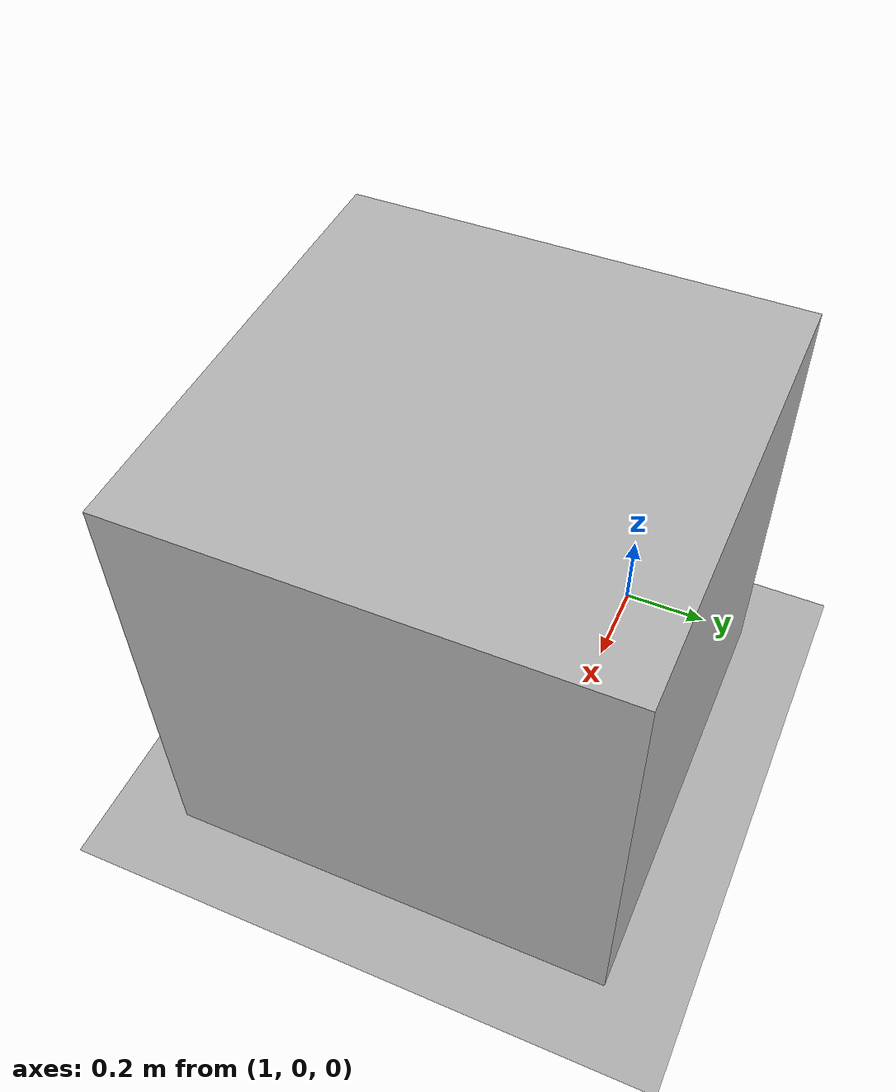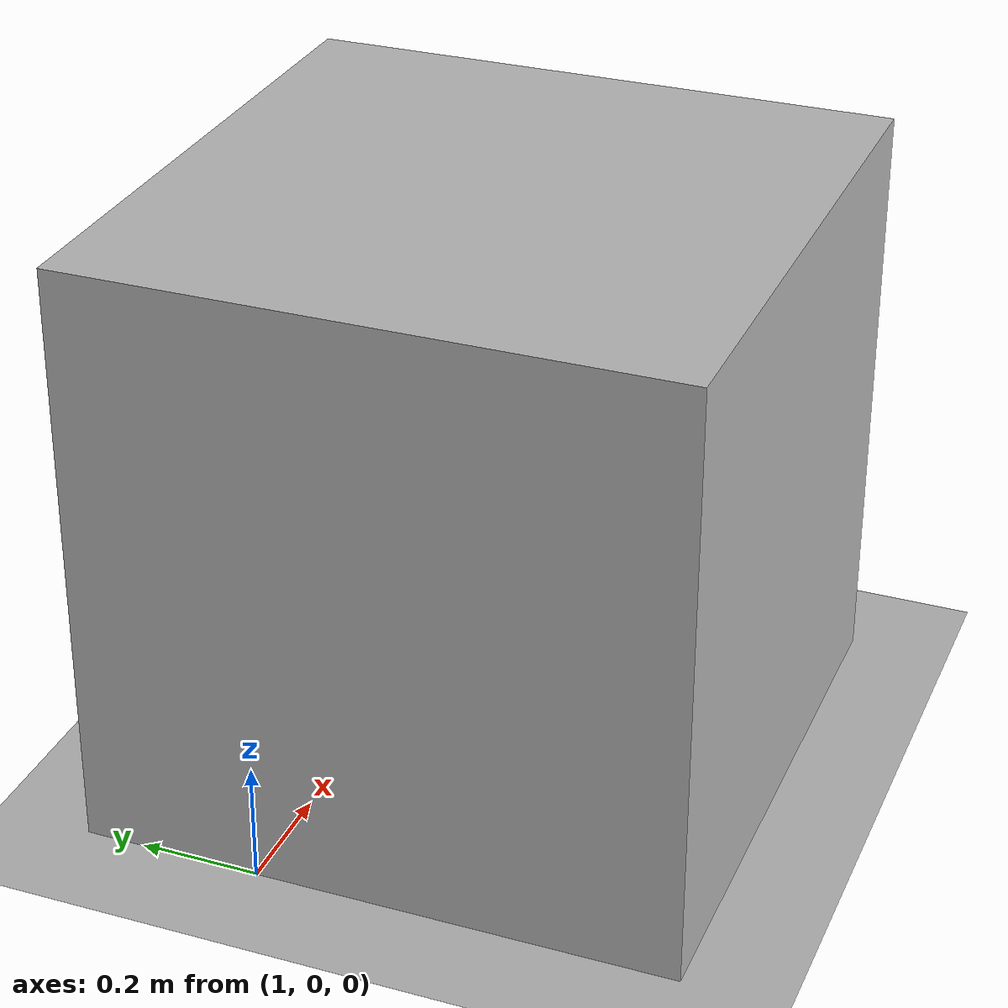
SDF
<?xml version='1.0'?>
<sdf version='1.8'>
  <world name='empty'>
    <physics name='1ms' type='ignored'>
      <max_step_size>0.001</max_step_size>
      <real_time_factor>1.0</real_time_factor>
    </physics>

    <plugin filename='gz-sim-physics-system' name='gz::sim::systems::Physics'/>
    <plugin filename='gz-sim-user-commands-system' name='gz::sim::systems::UserCommands'/>
    <plugin filename='gz-sim-scene-broadcaster-system' name='gz::sim::systems::SceneBroadcaster'/>
    <plugin filename='gz-sim-imu-system' name='gz::sim::systems::Imu'/>
    <plugin filename='gz-sim-sensors-system' name='gz::sim::systems::Sensors'>
      <render_engine>ogre2</render_engine>
    </plugin>

    <light name='sun' type='directional'>
      <cast_shadows>1</cast_shadows>
      <pose>0 0 10 0 0 0</pose>
      <diffuse>0.8 0.8 0.8 1</diffuse>
      <specular>0.2 0.2 0.2 1</specular>
      <attenuation>
        <range>1000</range>
        <constant>0.9</constant>
        <linear>0.01</linear>
        <quadratic>0.001</quadratic>
      </attenuation>
      <direction>-0.5 0.1 -0.9</direction>
    </light>

    <model name='ground_plane'>
      <static>1</static>
      <link name='link'>
        <collision name='collision'>
          <geometry>
            <plane>
              <normal>0 0 1</normal>
              <size>100 100</size>
            </plane>
          </geometry>
        </collision>
        <visual name='visual'>
          <geometry>
            <plane>
              <normal>0 0 1</normal>
              <size>100 100</size>
            </plane>
          </geometry>
          <material>
            <ambient>0.7 0.7 0.7 1</ambient>
            <diffuse>0.7 0.7 0.7 1</diffuse>
            <specular>0.1 0.1 0.1 1</specular>
          </material>
        </visual>
      </link>
    </model>

    <model name='unit_box'>
      <pose>1.5 -0.2 0.5 0 0 0</pose>
      <link name='link'>
        <collision name='collision'>
          <geometry>
            <box>
              <size>1 1 1</size>
            </box>
          </geometry>
        </collision>
        <visual name='visual'>
          <geometry>
            <box>
              <size>1 1 1</size>
            </box>
          </geometry>
        </visual>
      </link>
    </model>

    <gravity>0 0 -9.8</gravity>
    <magnetic_field>6e-06 2.3e-05 -4.2e-05</magnetic_field>
    <atmosphere type='adiabatic'/>
  </world>
</sdf>
